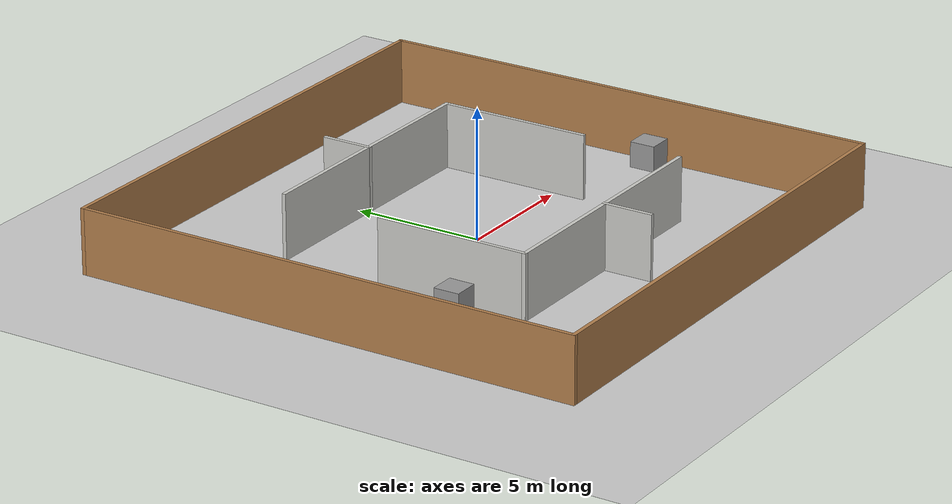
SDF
<sdf version="1.6">
 <world name="default">
  <light name="sun" type="directional">
   <pose>0 0 10 0 -0 0</pose>
   <diffuse>0.8 0.8 0.8 1</diffuse>
   <specular>0.2 0.2 0.2 1</specular>
   <attenuation>
    <range>1000</range>
    <constant>0.9</constant>
    <linear>0.01</linear>
    <quadratic>0.001</quadratic>
   </attenuation>
   <direction>-0.5 0.1 -0.9</direction>
  </light>
  <model name="ground_plane">
   <static>1</static>
   <link name="link">
    <collision name="collision">
     <geometry><plane><normal>0 0 1</normal><size>100 100</size></plane></geometry>
     <surface><friction><ode><mu>100</mu><mu2>50</mu2></ode></friction></surface>
    </collision>
    <visual name="visual">
     <cast_shadows>0</cast_shadows>
     <geometry><plane><normal>0 0 1</normal><size>100 100</size></plane></geometry>
     <material>
      <script><uri>file://media/materials/scripts/gazebo.material</uri><name>Gazebo/Grey</name></script>
     </material>
    </visual>
   </link>
  </model>
  <gravity>0 0 -9.8</gravity>
  <magnetic_field>6e-06 2.3e-05 -4.2e-05</magnetic_field>
  <atmosphere type="adiabatic"/>
  <physics name="default_physics" default="0" type="ode">
   <max_step_size>0.001</max_step_size>
   <real_time_factor>1</real_time_factor>
   <real_time_update_rate>1000</real_time_update_rate>
  </physics>
  <scene><ambient>0.4 0.4 0.4 1</ambient><background>0.7 0.7 0.7 1</background><shadows>1</shadows></scene>
  <spherical_coordinates>
   <surface_model>EARTH_WGS84</surface_model>
   <latitude_deg>0</latitude_deg>
   <longitude_deg>0</longitude_deg>
   <elevation>0</elevation>
   <heading_deg>0</heading_deg>
  </spherical_coordinates>
  <model name="3.cm14_test_map">
   <pose>0.036391 -0.096999 0 0 -0 0</pose>
   <link name="Wall_3">
    <collision name="Wall_3_Collision">
     <geometry><box><size>20 0.15 2.5</size></box></geometry>
     <pose>0 0 1.25 0 -0 0</pose>
    </collision>
    <visual name="Wall_3_Visual">
     <pose>0 0 1.25 0 -0 0</pose>
     <geometry><box><size>20 0.15 2.5</size></box></geometry>
     <material>
      <script><uri>file://media/materials/scripts/gazebo.material</uri><name>Gazebo/Wood</name></script>
      <ambient>1 0.764706 0.305882 1</ambient>
     </material>
    </visual>
    <pose>0 9.925 0 0 -0 0</pose>
   </link>
   <link name="Wall_4">
    <collision name="Wall_4_Collision">
     <geometry><box><size>20 0.15 2.5</size></box></geometry>
     <pose>0 0 1.25 0 -0 0</pose>
    </collision>
    <visual name="Wall_4_Visual">
     <pose>0 0 1.25 0 -0 0</pose>
     <geometry><box><size>20 0.15 2.5</size></box></geometry>
     <material>
      <script><uri>file://media/materials/scripts/gazebo.material</uri><name>Gazebo/Wood</name></script>
      <ambient>1 0.764706 0.305882 1</ambient>
     </material>
    </visual>
    <pose>9.925 0 0 0 0 -1.5708</pose>
   </link>
   <link name="Wall_46">
    <collision name="Wall_46_Collision">
     <geometry><box><size>10.5 0.15 2.5</size></box></geometry>
     <pose>0 0 1.25 0 -0 0</pose>
    </collision>
    <visual name="Wall_46_Visual">
     <pose>0 0 1.25 0 -0 0</pose>
     <geometry><box><size>10.5 0.15 2.5</size></box></geometry>
     <material>
      <script><uri>file://media/materials/scripts/gazebo.material</uri><name>Gazebo/CeilingTiled</name></script>
      <ambient>0.666667 1 0.498039 1</ambient>
     </material>
    </visual>
    <pose>0.07649 4.81782 0 0 -0 0</pose>
   </link>
   <link name="Wall_5">
    <collision name="Wall_5_Collision">
     <geometry><box><size>20 0.15 2.5</size></box></geometry>
     <pose>0 0 1.25 0 -0 0</pose>
    </collision>
    <visual name="Wall_5_Visual">
     <pose>0 0 1.25 0 -0 0</pose>
     <geometry><box><size>20 0.15 2.5</size></box></geometry>
     <material>
      <script><uri>file://media/materials/scripts/gazebo.material</uri><name>Gazebo/Wood</name></script>
      <ambient>1 0.764706 0.305882 1</ambient>
     </material>
    </visual>
    <pose>0 -9.925 0 0 -0 3.14159</pose>
   </link>
   <link name="Wall_52">
    <collision name="Wall_52_Collision">
     <geometry><box><size>10.5 0.15 2.5</size></box></geometry>
     <pose>0 0 1.25 0 -0 0</pose>
    </collision>
    <visual name="Wall_52_Visual">
     <pose>0 0 1.25 0 -0 0</pose>
     <geometry><box><size>10.5 0.15 2.5</size></box></geometry>
     <material>
      <script><uri>file://media/materials/scripts/gazebo.material</uri><name>Gazebo/CeilingTiled</name></script>
      <ambient>0.666667 1 0.498039 1</ambient>
     </material>
    </visual>
    <pose>0.07649 -5.03218 0 0 -0 3.14159</pose>
   </link>
   <link name="Wall_57">
    <collision name="Wall_57_Collision">
     <geometry><box><size>6 0.15 2.5</size></box></geometry>
     <pose>0 0 1.25 0 -0 0</pose>
    </collision>
    <visual name="Wall_57_Visual">
     <pose>0 0 1.25 0 -0 0</pose>
     <geometry><box><size>6 0.15 2.5</size></box></geometry>
     <material>
      <script><uri>file://media/materials/scripts/gazebo.material</uri><name>Gazebo/CeilingTiled</name></script>
      <ambient>0.666667 1 0.498039 1</ambient>
     </material>
    </visual>
    <pose>5.25149 1.89282 0 0 0 -1.5708</pose>
   </link>
   <link name="Wall_59">
    <collision name="Wall_59_Collision">
     <geometry><box><size>6 0.15 2.5</size></box></geometry>
     <pose>0 0 1.25 0 -0 0</pose>
    </collision>
    <visual name="Wall_59_Visual">
     <pose>0 0 1.25 0 -0 0</pose>
     <geometry><box><size>6 0.15 2.5</size></box></geometry>
     <material>
      <script><uri>file://media/materials/scripts/gazebo.material</uri><name>Gazebo/CeilingTiled</name></script>
      <ambient>0.666667 1 0.498039 1</ambient>
     </material>
    </visual>
    <pose>-5.09851 -2.10718 0 0 -0 1.5708</pose>
   </link>
   <link name="Wall_61">
    <collision name="Wall_61_Collision">
     <geometry><box><size>2 0.15 2.5</size></box></geometry>
     <pose>0 0 1.25 0 -0 0</pose>
    </collision>
    <visual name="Wall_61_Visual">
     <pose>0 0 1.25 0 -0 0</pose>
     <geometry><box><size>2 0.15 2.5</size></box></geometry>
     <material>
      <script><uri>file://media/materials/scripts/gazebo.material</uri><name>Gazebo/CeilingTiled</name></script>
      <ambient>0.666667 1 0.498039 1</ambient>
     </material>
    </visual>
    <pose>0.136374 -5.94123 0 0 0 -1.5708</pose>
   </link>
   <link name="Wall_65">
    <collision name="Wall_65_Collision">
     <geometry><box><size>2 0.15 2.5</size></box></geometry>
     <pose>0 0 1.25 0 -0 0</pose>
    </collision>
    <visual name="Wall_65_Visual">
     <pose>0 0 1.25 0 -0 0</pose>
     <geometry><box><size>2 0.15 2.5</size></box></geometry>
     <material>
      <script><uri>file://media/materials/scripts/gazebo.material</uri><name>Gazebo/CeilingTiled</name></script>
      <ambient>0.666667 1 0.498039 1</ambient>
     </material>
    </visual>
    <pose>0.110833 5.71739 0 0 -0 1.5708</pose>
   </link>
   <link name="Wall_7">
    <collision name="Wall_7_Collision">
     <geometry><box><size>20 0.15 2.5</size></box></geometry>
     <pose>0 0 1.25 0 -0 0</pose>
    </collision>
    <visual name="Wall_7_Visual">
     <pose>0 0 1.25 0 -0 0</pose>
     <geometry><box><size>20 0.15 2.5</size></box></geometry>
     <material>
      <script><uri>file://media/materials/scripts/gazebo.material</uri><name>Gazebo/Wood</name></script>
      <ambient>1 0.764706 0.305882 1</ambient>
     </material>
    </visual>
    <pose>-9.925 0 0 0 0 -1.5708</pose>
   </link>
   <static>1</static>
  </model>
  <model name="unit_box">
   <pose>-5.78625 -2.75382 0.499995 0 -1e-05 0</pose>
   <link name="link">
    <inertial>
     <mass>1</mass>
     <inertia>
      <ixx>0.166667</ixx>
      <ixy>0</ixy>
      <ixz>0</ixz>
      <iyy>0.166667</iyy>
      <iyz>0</iyz>
      <izz>0.166667</izz>
     </inertia>
    </inertial>
    <collision name="collision"><geometry><box><size>1 1 1</size></box></geometry></collision>
    <visual name="visual">
     <geometry><box><size>1 1 1</size></box></geometry>
     <material>
      <script><name>Gazebo/Grey</name><uri>file://media/materials/scripts/gazebo.material</uri></script>
     </material>
    </visual>
   </link>
  </model>
  <model name="unit_box_0">
   <pose>6.45991 5.50966 0.499995 1e-05 -0 0</pose>
   <link name="link">
    <inertial>
     <mass>1</mass>
     <inertia>
      <ixx>0.166667</ixx>
      <ixy>0</ixy>
      <ixz>0</ixz>
      <iyy>0.166667</iyy>
      <iyz>0</iyz>
      <izz>0.166667</izz>
     </inertia>
    </inertial>
    <collision name="collision"><geometry><box><size>1 1 1</size></box></geometry></collision>
    <visual name="visual">
     <geometry><box><size>1 1 1</size></box></geometry>
     <material>
      <script><name>Gazebo/Grey</name><uri>file://media/materials/scripts/gazebo.material</uri></script>
     </material>
    </visual>
   </link>
  </model>
  <model name="unit_box_1">
   <pose>9.30969 -9.33479 0.499995 0 -1e-05 0</pose>
   <link name="link">
    <inertial>
     <mass>1</mass>
     <inertia>
      <ixx>0.166667</ixx>
      <ixy>0</ixy>
      <ixz>0</ixz>
      <iyy>0.166667</iyy>
      <iyz>0</iyz>
      <izz>0.166667</izz>
     </inertia>
    </inertial>
    <collision name="collision"><geometry><box><size>1 1 1</size></box></geometry></collision>
    <visual name="visual">
     <geometry><box><size>1 1 1</size></box></geometry>
     <material>
      <script><name>Gazebo/Grey</name><uri>file://media/materials/scripts/gazebo.material</uri></script>
     </material>
    </visual>
   </link>
  </model>
  <model name="unit_cylinder">
   <pose>-9.17612 9.14244 0.499992 -3e-06 -4e-06 -0</pose>
   <link name="link">
    <inertial>
     <mass>1</mass>
     <inertia><ixx>0.145833</ixx><ixy>0</ixy><ixz>0</ixz><iyy>0.145833</iyy><iyz>0</iyz><izz>0.125</izz></inertia>
    </inertial>
    <collision name="collision">
     <geometry><cylinder><radius>0.5</radius><length>1</length></cylinder></geometry>
    </collision>
    <visual name="visual">
     <geometry><cylinder><radius>0.5</radius><length>1</length></cylinder></geometry>
     <material>
      <script><name>Gazebo/Grey</name><uri>file://media/materials/scripts/gazebo.material</uri></script>
     </material>
    </visual>
   </link>
  </model>
  <model name="unit_box_2">
   <pose>-3.9119 -4.03414 0.499995 0 -1e-05 0</pose>
   <link name="link">
    <inertial>
     <mass>1</mass>
     <inertia>
      <ixx>0.166667</ixx>
      <ixy>0</ixy>
      <ixz>0</ixz>
      <iyy>0.166667</iyy>
      <iyz>0</iyz>
      <izz>0.166667</izz>
     </inertia>
    </inertial>
    <collision name="collision"><geometry><box><size>1 1 1</size></box></geometry></collision>
    <visual name="visual">
     <geometry><box><size>1 1 1</size></box></geometry>
     <material>
      <script><name>Gazebo/Grey</name><uri>file://media/materials/scripts/gazebo.material</uri></script>
     </material>
    </visual>
   </link>
  </model>
  <model name="unit_box_3">
   <pose>9.38638 -1.50244 0.5 0 0 -5e-06</pose>
   <link name="link">
    <inertial>
     <mass>1</mass>
     <inertia>
      <ixx>0.166667</ixx>
      <ixy>0</ixy>
      <ixz>0</ixz>
      <iyy>0.166667</iyy>
      <iyz>0</iyz>
      <izz>0.166667</izz>
     </inertia>
    </inertial>
    <collision name="collision"><geometry><box><size>1 1 1</size></box></geometry></collision>
    <visual name="visual">
     <geometry><box><size>1 1 1</size></box></geometry>
     <material>
      <script><name>Gazebo/Grey</name><uri>file://media/materials/scripts/gazebo.material</uri></script>
     </material>
    </visual>
   </link>
  </model>
 </world>
</sdf>
